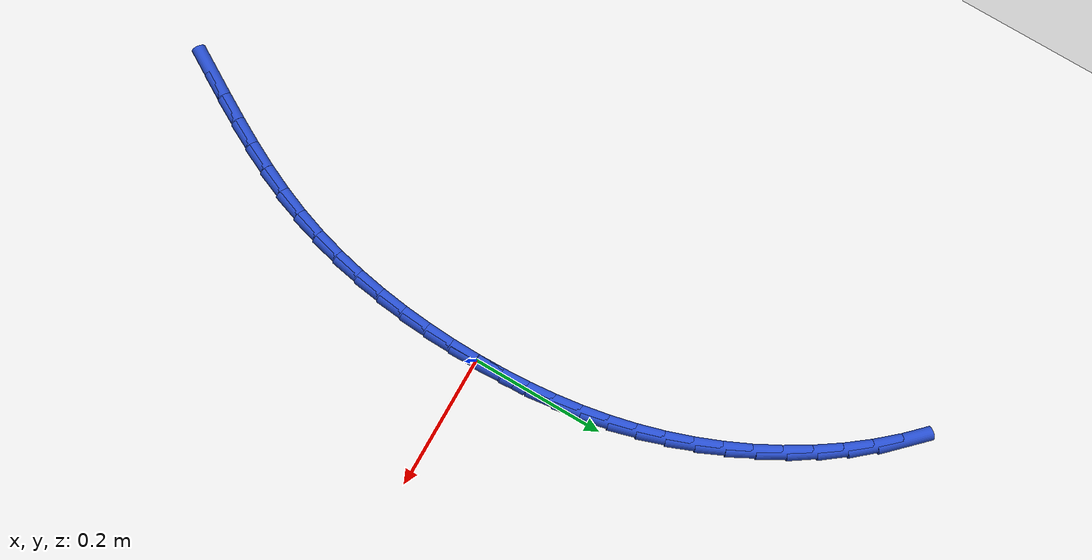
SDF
<sdf version="1.6">
 <world name="default">
  <model name="ground_plane">
   <static>1</static>
   <link name="link">
    <collision name="collision">
     <geometry><plane><normal>0 0 1</normal><size>100 100</size></plane></geometry>
     <surface><friction><ode><mu>100</mu><mu2>50</mu2></ode></friction></surface>
    </collision>
    <visual name="visual">
     <cast_shadows>0</cast_shadows>
     <geometry><plane><normal>0 0 1</normal><size>100 100</size></plane></geometry>
     <material>
      <script><uri>file://media/materials/scripts/gazebo.material</uri><name>Gazebo/WhiteGlow</name></script>
     </material>
    </visual>
   </link>
  </model>
  <model name="line">
   <link name="link_0">
    <pose>2.168404344971009e-17 1.3877787807814457e-17 0.01 0 1.57 -1.5551212567801216</pose>
    <collision name="collision">
     <geometry><cylinder><radius>0.01</radius><length>0.08</length></cylinder></geometry>
    </collision>
    <visual name="visual">
     <material>
      <script><name>Gazebo/Blue</name><uri>file://media/materials/scripts/gazebo.material</uri></script>
     </material>
     <geometry><cylinder><radius>0.01</radius><length>0.08</length></cylinder></geometry>
    </visual>
   </link>
   <link name="link_1">
    <pose>-0.0006400076228072262 0.04082630591460163 0.01 0 1.57 -1.5184108999417012</pose>
    <collision name="collision">
     <geometry><cylinder><radius>0.01</radius><length>0.08</length></cylinder></geometry>
    </collision>
    <visual name="visual">
     <material>
      <script><name>Gazebo/Blue</name><uri>file://media/materials/scripts/gazebo.material</uri></script>
     </material>
     <geometry><cylinder><radius>0.01</radius><length>0.08</length></cylinder></geometry>
    </visual>
   </link>
   <link name="link_2">
    <pose>-0.0027711181989995273 0.08147044925881956 0.01 0 1.57 -1.4789455290635551</pose>
    <collision name="collision">
     <geometry><cylinder><radius>0.01</radius><length>0.08</length></cylinder></geometry>
    </collision>
    <visual name="visual">
     <material>
      <script><name>Gazebo/Blue</name><uri>file://media/materials/scripts/gazebo.material</uri></script>
     </material>
     <geometry><cylinder><radius>0.01</radius><length>0.08</length></cylinder></geometry>
    </visual>
   </link>
   <link name="link_3">
    <pose>-0.006496500507876481 0.12191538846278568 0.01 0 1.57 -1.4368041478772031</pose>
    <collision name="collision">
     <geometry><cylinder><radius>0.01</radius><length>0.08</length></cylinder></geometry>
    </collision>
    <visual name="visual">
     <material>
      <script><name>Gazebo/Blue</name><uri>file://media/materials/scripts/gazebo.material</uri></script>
     </material>
     <geometry><cylinder><radius>0.01</radius><length>0.08</length></cylinder></geometry>
    </visual>
   </link>
   <link name="link_4">
    <pose>-0.011919323328737685 0.1621440819566316 0.01 0 1.57 -1.3921159415532443</pose>
    <collision name="collision">
     <geometry><cylinder><radius>0.01</radius><length>0.08</length></cylinder></geometry>
    </collision>
    <visual name="visual">
     <material>
      <script><name>Gazebo/Blue</name><uri>file://media/materials/scripts/gazebo.material</uri></script>
     </material>
     <geometry><cylinder><radius>0.01</radius><length>0.08</length></cylinder></geometry>
    </visual>
   </link>
   <link name="link_5">
    <pose>-0.019142755440882744 0.2021394881704891 0.01 0 1.57 -1.3450662787510348</pose>
    <collision name="collision">
     <geometry><cylinder><radius>0.01</radius><length>0.08</length></cylinder></geometry>
    </collision>
    <visual name="visual">
     <material>
      <script><name>Gazebo/Blue</name><uri>file://media/materials/scripts/gazebo.material</uri></script>
     </material>
     <geometry><cylinder><radius>0.01</radius><length>0.08</length></cylinder></geometry>
    </visual>
   </link>
   <link name="link_6">
    <pose>-0.028269965623611257 0.24188456553449006 0.01 0 1.57 -1.2959001138740873</pose>
    <collision name="collision">
     <geometry><cylinder><radius>0.01</radius><length>0.08</length></cylinder></geometry>
    </collision>
    <visual name="visual">
     <material>
      <script><name>Gazebo/Blue</name><uri>file://media/materials/scripts/gazebo.material</uri></script>
     </material>
     <geometry><cylinder><radius>0.01</radius><length>0.08</length></cylinder></geometry>
    </visual>
   </link>
   <link name="link_7">
    <pose>-0.0394041226562228 0.281362272478766 0.01 0 1.57 -1.244921763635171</pose>
    <collision name="collision">
     <geometry><cylinder><radius>0.01</radius><length>0.08</length></cylinder></geometry>
    </collision>
    <visual name="visual">
     <material>
      <script><name>Gazebo/Blue</name><uri>file://media/materials/scripts/gazebo.material</uri></script>
     </material>
     <geometry><cylinder><radius>0.01</radius><length>0.08</length></cylinder></geometry>
    </visual>
   </link>
   <link name="link_8">
    <pose>-0.052648395318017016 0.32055556743344893 0.01 0 1.57 -1.1926634956411664</pose>
    <collision name="collision">
     <geometry><cylinder><radius>0.01</radius><length>0.08</length></cylinder></geometry>
    </collision>
    <visual name="visual">
     <material>
      <script><name>Gazebo/Blue</name><uri>file://media/materials/scripts/gazebo.material</uri></script>
     </material>
     <geometry><cylinder><radius>0.01</radius><length>0.08</length></cylinder></geometry>
    </visual>
   </link>
   <link name="link_9">
    <pose>-0.06808680993118768 0.3594188577691552 0.01 0 1.57 -1.140107194867661</pose>
    <collision name="collision">
     <geometry><cylinder><radius>0.01</radius><length>0.08</length></cylinder></geometry>
    </collision>
    <visual name="visual">
     <material>
      <script><name>Gazebo/Blue</name><uri>file://media/materials/scripts/gazebo.material</uri></script>
     </material>
     <geometry><cylinder><radius>0.01</radius><length>0.08</length></cylinder></geometry>
    </visual>
   </link>
   <link name="link_10">
    <pose>-0.08569788404906521 0.3977491840606631 0.01 0 1.57 -1.0869871817703625</pose>
    <collision name="collision">
     <geometry><cylinder><radius>0.01</radius><length>0.08</length></cylinder></geometry>
    </collision>
    <visual name="visual">
     <material>
      <script><name>Gazebo/Blue</name><uri>file://media/materials/scripts/gazebo.material</uri></script>
     </material>
     <geometry><cylinder><radius>0.01</radius><length>0.08</length></cylinder></geometry>
    </visual>
   </link>
   <link name="link_11">
    <pose>-0.10542398008695125 0.4352896613343259 0.01 0 1.57 -1.0326520526870329</pose>
    <collision name="collision">
     <geometry><cylinder><radius>0.01</radius><length>0.08</length></cylinder></geometry>
    </collision>
    <visual name="visual">
     <material>
      <script><name>Gazebo/Blue</name><uri>file://media/materials/scripts/gazebo.material</uri></script>
     </material>
     <geometry><cylinder><radius>0.01</radius><length>0.08</length></cylinder></geometry>
    </visual>
   </link>
   <link name="link_12">
    <pose>-0.1272074283758707 0.47178335676265554 0.01 0 1.57 -0.9764632923842738</pose>
    <collision name="collision">
     <geometry><cylinder><radius>0.01</radius><length>0.08</length></cylinder></geometry>
    </collision>
    <visual name="visual">
     <material>
      <script><name>Gazebo/Blue</name><uri>file://media/materials/scripts/gazebo.material</uri></script>
     </material>
     <geometry><cylinder><radius>0.01</radius><length>0.08</length></cylinder></geometry>
    </visual>
   </link>
   <link name="link_13">
    <pose>-0.15099055924684845 0.506973337518164 0.01 0 1.57 -0.9177884465022511</pose>
    <collision name="collision">
     <geometry><cylinder><radius>0.01</radius><length>0.08</length></cylinder></geometry>
    </collision>
    <visual name="visual">
     <material>
      <script><name>Gazebo/Blue</name><uri>file://media/materials/scripts/gazebo.material</uri></script>
     </material>
     <geometry><cylinder><radius>0.01</radius><length>0.08</length></cylinder></geometry>
    </visual>
   </link>
   <link name="link_14">
    <pose>-0.1767157030309095 0.5406026707733635 0.01 0 1.57 -0.8560005480095294</pose>
    <collision name="collision">
     <geometry><cylinder><radius>0.01</radius><length>0.08</length></cylinder></geometry>
    </collision>
    <visual name="visual">
     <material>
      <script><name>Gazebo/Blue</name><uri>file://media/materials/scripts/gazebo.material</uri></script>
     </material>
     <geometry><cylinder><radius>0.01</radius><length>0.08</length></cylinder></geometry>
    </visual>
   </link>
   <link name="link_15">
    <pose>-0.20432519005907876 0.5724144237007665 0.01 0 1.57 -0.7904862024280711</pose>
    <collision name="collision">
     <geometry><cylinder><radius>0.01</radius><length>0.08</length></cylinder></geometry>
    </collision>
    <visual name="visual">
     <material>
      <script><name>Gazebo/Blue</name><uri>file://media/materials/scripts/gazebo.material</uri></script>
     </material>
     <geometry><cylinder><radius>0.01</radius><length>0.08</length></cylinder></geometry>
    </visual>
   </link>
   <link name="link_176">
    <pose>-0.16413219589610714 -0.5360740601251666 0.01 0 1.57 1.0314201995885905</pose>
    <collision name="collision">
     <geometry><cylinder><radius>0.01</radius><length>0.08</length></cylinder></geometry>
    </collision>
    <visual name="visual">
     <material>
      <script><name>Gazebo/Blue</name><uri>file://media/materials/scripts/gazebo.material</uri></script>
     </material>
     <geometry><cylinder><radius>0.01</radius><length>0.08</length></cylinder></geometry>
    </visual>
   </link>
   <link name="link_177">
    <pose>-0.1431402974497364 -0.5010046762188163 0.01 0 1.57 1.0438890765096427</pose>
    <collision name="collision">
     <geometry><cylinder><radius>0.01</radius><length>0.08</length></cylinder></geometry>
    </collision>
    <visual name="visual">
     <material>
      <script><name>Gazebo/Blue</name><uri>file://media/materials/scripts/gazebo.material</uri></script>
     </material>
     <geometry><cylinder><radius>0.01</radius><length>0.08</length></cylinder></geometry>
    </visual>
   </link>
   <link name="link_178">
    <pose>-0.12268332816112283 -0.46584134994061477 0.01 0 1.57 1.0655919381356371</pose>
    <collision name="collision">
     <geometry><cylinder><radius>0.01</radius><length>0.08</length></cylinder></geometry>
    </collision>
    <visual name="visual">
     <material>
      <script><name>Gazebo/Blue</name><uri>file://media/materials/scripts/gazebo.material</uri></script>
     </material>
     <geometry><cylinder><radius>0.01</radius><length>0.08</length></cylinder></geometry>
    </visual>
   </link>
   <link name="link_179">
    <pose>-0.10308495618436 -0.4304063462123516 0.01 0 1.57 1.096639625220316</pose>
    <collision name="collision">
     <geometry><cylinder><radius>0.01</radius><length>0.08</length></cylinder></geometry>
    </collision>
    <visual name="visual">
     <material>
      <script><name>Gazebo/Blue</name><uri>file://media/materials/scripts/gazebo.material</uri></script>
     </material>
     <geometry><cylinder><radius>0.01</radius><length>0.08</length></cylinder></geometry>
    </visual>
   </link>
   <link name="link_180">
    <pose>-0.08466884967354026 -0.3945219299558139 0.01 0 1.57 1.1370643906555433</pose>
    <collision name="collision">
     <geometry><cylinder><radius>0.01</radius><length>0.08</length></cylinder></geometry>
    </collision>
    <visual name="visual">
     <material>
      <script><name>Gazebo/Blue</name><uri>file://media/materials/scripts/gazebo.material</uri></script>
     </material>
     <geometry><cylinder><radius>0.01</radius><length>0.08</length></cylinder></geometry>
    </visual>
   </link>
   <link name="link_181">
    <pose>-0.06775867678275709 -0.358010366092791 0.01 0 1.57 1.1867350589358072</pose>
    <collision name="collision">
     <geometry><cylinder><radius>0.01</radius><length>0.08</length></cylinder></geometry>
    </collision>
    <visual name="visual">
     <material>
      <script><name>Gazebo/Blue</name><uri>file://media/materials/scripts/gazebo.material</uri></script>
     </material>
     <geometry><cylinder><radius>0.01</radius><length>0.08</length></cylinder></geometry>
    </visual>
   </link>
   <link name="link_182">
    <pose>-0.05267802311218614 -0.320693982779742 0.01 0 1.57 1.2425142082707554</pose>
    <collision name="collision">
     <geometry><cylinder><radius>0.01</radius><length>0.08</length></cylinder></geometry>
    </collision>
    <visual name="visual">
     <material>
      <script><name>Gazebo/Blue</name><uri>file://media/materials/scripts/gazebo.material</uri></script>
     </material>
     <geometry><cylinder><radius>0.01</radius><length>0.08</length></cylinder></geometry>
    </visual>
   </link>
   <link name="link_183">
    <pose>-0.03965744588184681 -0.28246636607524034 0.01 0 1.57 1.2961025328118978</pose>
    <collision name="collision">
     <geometry><cylinder><radius>0.01</radius><length>0.08</length></cylinder></geometry>
    </collision>
    <visual name="visual">
     <material>
      <script><name>Gazebo/Blue</name><uri>file://media/materials/scripts/gazebo.material</uri></script>
     </material>
     <geometry><cylinder><radius>0.01</radius><length>0.08</length></cylinder></geometry>
    </visual>
   </link>
   <link name="link_184">
    <pose>-0.02865602471839971 -0.24342904851334604 0.01 0 1.57 1.346171784219498</pose>
    <collision name="collision">
     <geometry><cylinder><radius>0.01</radius><length>0.08</length></cylinder></geometry>
    </collision>
    <visual name="visual">
     <material>
      <script><name>Gazebo/Blue</name><uri>file://media/materials/scripts/gazebo.material</uri></script>
     </material>
     <geometry><cylinder><radius>0.01</radius><length>0.08</length></cylinder></geometry>
    </visual>
   </link>
   <link name="link_185">
    <pose>-0.019583585065729613 -0.2037212903594746 0.01 0 1.57 1.3929290988266545</pose>
    <collision name="collision">
     <geometry><cylinder><radius>0.01</radius><length>0.08</length></cylinder></geometry>
    </collision>
    <visual name="visual">
     <material>
      <script><name>Gazebo/Blue</name><uri>file://media/materials/scripts/gazebo.material</uri></script>
     </material>
     <geometry><cylinder><radius>0.01</radius><length>0.08</length></cylinder></geometry>
    </visual>
   </link>
   <link name="link_186">
    <pose>-0.012349952367721368 -0.16348235187904211 0.01 0 1.57 1.4366116017023545</pose>
    <collision name="collision">
     <geometry><cylinder><radius>0.01</radius><length>0.08</length></cylinder></geometry>
    </collision>
    <visual name="visual">
     <material>
      <script><name>Gazebo/Blue</name><uri>file://media/materials/scripts/gazebo.material</uri></script>
     </material>
     <geometry><cylinder><radius>0.01</radius><length>0.08</length></cylinder></geometry>
    </visual>
   </link>
   <link name="link_187">
    <pose>-0.006864952068259441 -0.12285149333746255 0.01 0 1.57 1.4774719957578002</pose>
    <collision name="collision">
     <geometry><cylinder><radius>0.01</radius><length>0.08</length></cylinder></geometry>
    </collision>
    <visual name="visual">
     <material>
      <script><name>Gazebo/Blue</name><uri>file://media/materials/scripts/gazebo.material</uri></script>
     </material>
     <geometry><cylinder><radius>0.01</radius><length>0.08</length></cylinder></geometry>
    </visual>
   </link>
   <link name="link_188">
    <pose>-0.0030384096112287384 -0.08196797500015211 0.01 0 1.57 1.5157683044737296</pose>
    <collision name="collision">
     <geometry><cylinder><radius>0.01</radius><length>0.08</length></cylinder></geometry>
    </collision>
    <visual name="visual">
     <material>
      <script><name>Gazebo/Blue</name><uri>file://media/materials/scripts/gazebo.material</uri></script>
     </material>
     <geometry><cylinder><radius>0.01</radius><length>0.08</length></cylinder></geometry>
    </visual>
   </link>
   <link name="link_189">
    <pose>-0.0007801504405140036 -0.040971057132526176 0.01 0 1.57 1.5517571262725807</pose>
    <collision name="collision">
     <geometry><cylinder><radius>0.01</radius><length>0.08</length></cylinder></geometry>
    </collision>
    <visual name="visual">
     <material>
      <script><name>Gazebo/Blue</name><uri>file://media/materials/scripts/gazebo.material</uri></script>
     </material>
     <geometry><cylinder><radius>0.01</radius><length>0.08</length></cylinder></geometry>
    </visual>
   </link>
   <link name="link_190">
    <pose>1.6479873021779667e-17 -2.42861286636753e-16 0.01 0 1.57 -1.5559029349901965</pose>
    <collision name="collision">
     <geometry><cylinder><radius>0.01</radius><length>0.08</length></cylinder></geometry>
    </collision>
    <visual name="visual">
     <material>
      <script><name>Gazebo/Blue</name><uri>file://media/materials/scripts/gazebo.material</uri></script>
     </material>
     <geometry><cylinder><radius>0.01</radius><length>0.08</length></cylinder></geometry>
    </visual>
   </link>
   <link name="link_191">
    <pose>-0.0006077837335714221 0.04080593613201027 0.01 0 1.57 -1.5559029349901963</pose>
    <collision name="collision">
     <geometry><cylinder><radius>0.01</radius><length>0.08</length></cylinder></geometry>
    </collision>
    <visual name="visual">
     <material>
      <script><name>Gazebo/Blue</name><uri>file://media/materials/scripts/gazebo.material</uri></script>
     </material>
     <geometry><cylinder><radius>0.01</radius><length>0.08</length></cylinder></geometry>
    </visual>
   </link>
  </model>
 </world>
</sdf>
